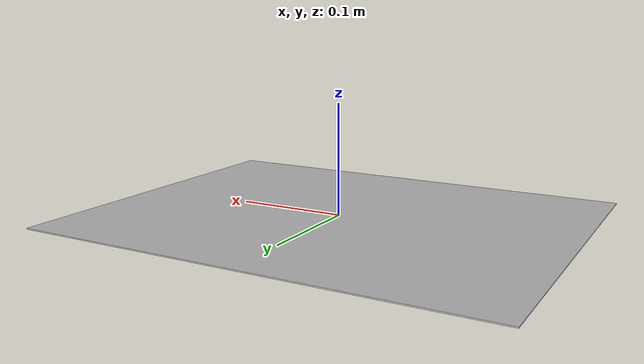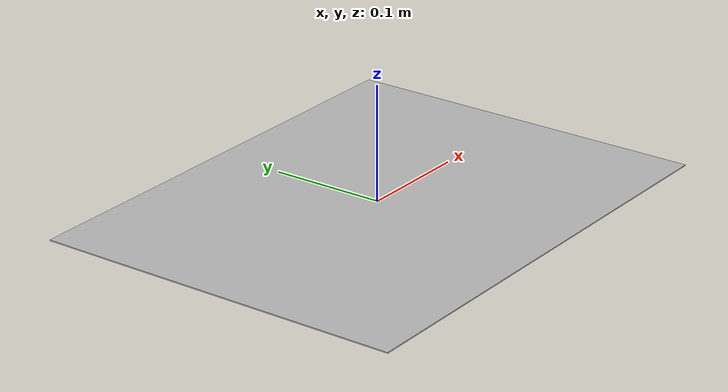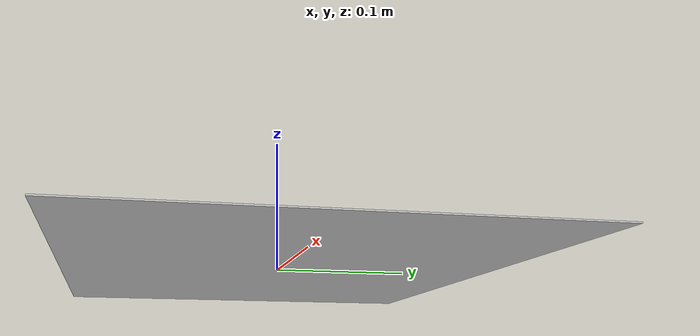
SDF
<?xml version='1.0'?>
<sdf version='1.4'>
    <model name="tagttestgroup">
        <static>true</static>
        <link name='link'>

            <collision name ='collision'>
                <geometry>
                    <box>
                        <size>.4185 .324 .001</size>
                    </box>
                </geometry>
            </collision>
            <visual name='visual'>
                <geometry>
                    <box>
                        <size>.4185 .324 .001</size>
                    </box>
                </geometry>

                <material>
                    <script>
                        <uri>model://testgrouptags/materials/scripts</uri>
                        <uri>model://testgrouptags/materials/textures</uri>
                        <name>testgrouptags/Diffuse</name>
                    </script>
                </material>
            </visual>
        </link>
    </model>
</sdf>
